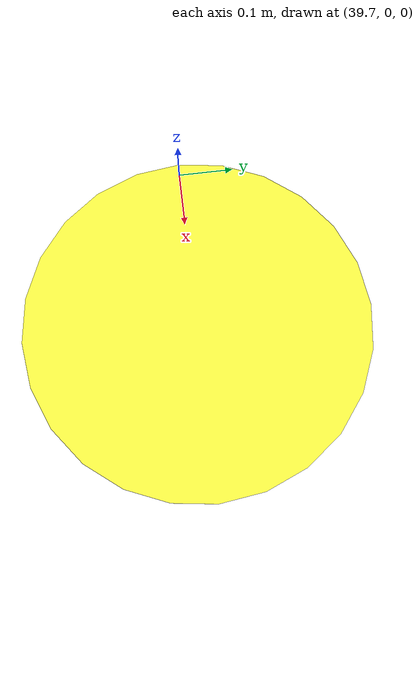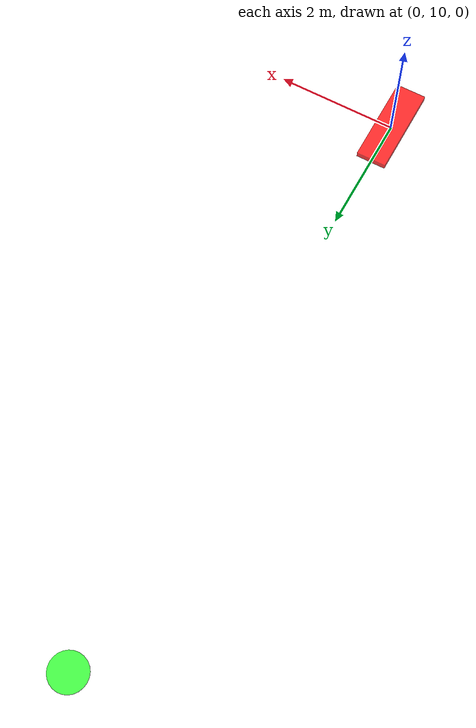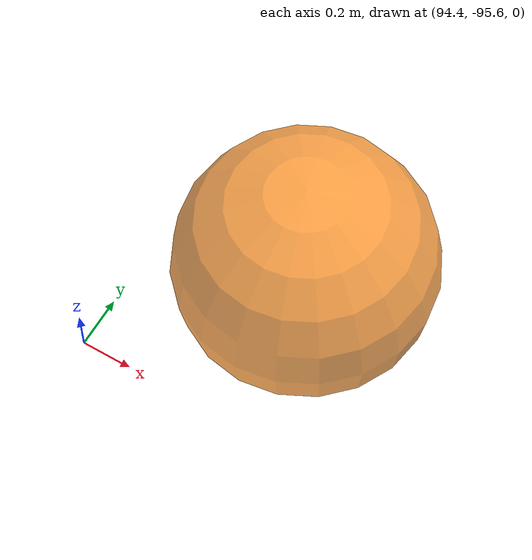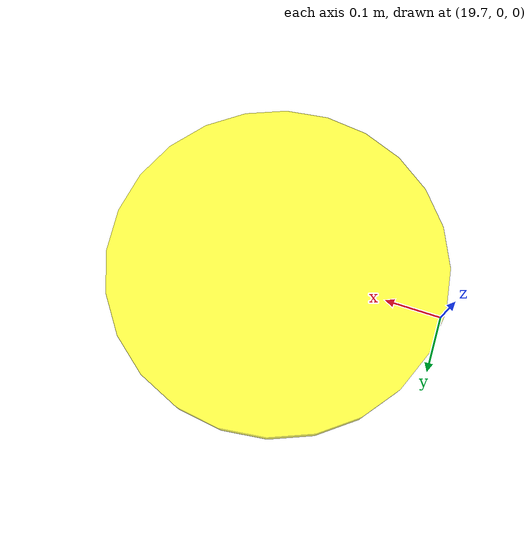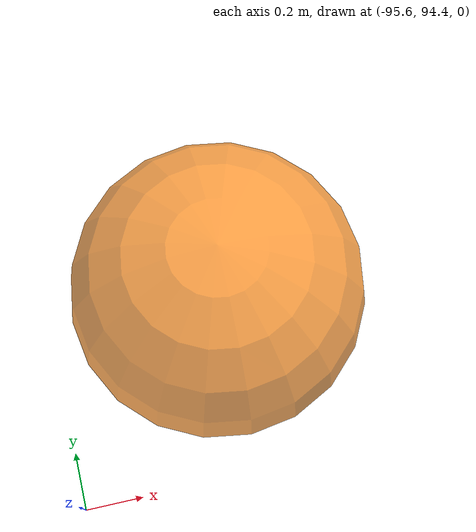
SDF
<?xml version="1.0" ?>
<sdf version="1.9">
  <world name="satellite_portland">

    <!-- Physics -->
    <physics name="1ms" type="ignored">
      <max_step_size>0.001</max_step_size>
      <real_time_factor>1</real_time_factor>
    </physics>

    <!-- Gazebo Harmonic plugins -->
    <plugin filename="gz-sim-physics-system" name="gz::sim::systems::Physics"/>
    <plugin filename="gz-sim-user-commands-system" name="gz::sim::systems::UserCommands"/>
    <plugin filename="gz-sim-scene-broadcaster-system" name="gz::sim::systems::SceneBroadcaster"/>
    <plugin filename="gz-sim-sensors-system" name="gz::sim::systems::Sensors">
      <render_engine>ogre</render_engine>
    </plugin>
    <plugin filename="gz-sim-imu-system" name="gz::sim::systems::Imu"/>
    <plugin filename="gz-sim-contact-system" name="gz::sim::systems::Contact"/>

    <!-- Lighting - simulate outdoor conditions -->
    <light type="directional" name="sun">
      <cast_shadows>true</cast_shadows>
      <pose>0 0 100 0 0 0</pose>
      <diffuse>0.9 0.9 0.85 1</diffuse>
      <specular>0.3 0.3 0.3 1</specular>
      <attenuation>
        <range>1000</range>
        <constant>0.9</constant>
        <linear>0.01</linear>
        <quadratic>0.001</quadratic>
      </attenuation>
      <!-- Sun angle for Portland, OR latitude -->
      <direction>-0.4 0.2 -0.9</direction>
    </light>

    <!-- Ambient light for outdoor scene -->
    <light type="directional" name="ambient">
      <cast_shadows>false</cast_shadows>
      <pose>0 0 50 0 0 0</pose>
      <diffuse>0.3 0.3 0.35 1</diffuse>
      <specular>0 0 0 1</specular>
      <direction>0 0 -1</direction>
    </light>

    <!-- Ground plane with satellite imagery texture -->
    <model name="satellite_ground">
      <static>true</static>
      <link name="link">
        <collision name="collision">
          <geometry>
            <plane>
              <normal>0 0 1</normal>
              <size>200 200</size>
            </plane>
          </geometry>
          <surface>
            <friction>
              <ode>
                <mu>0.8</mu>
                <mu2>0.8</mu2>
              </ode>
            </friction>
          </surface>
        </collision>
        <visual name="visual">
          <cast_shadows>false</cast_shadows>
          <geometry>
            <plane>
              <normal>0 0 1</normal>
              <size>200 200</size>
            </plane>
          </geometry>
          <material>
            <ambient>1 1 1 1</ambient>
            <diffuse>1 1 1 1</diffuse>
            <specular>0.1 0.1 0.1 1</specular>
            <!-- Texture path: relative to world file location, go up one level to share dir -->
            <pbr>
              <metal>
                <albedo_map>../textures/satellite_portland.jpg</albedo_map>
              </metal>
            </pbr>
          </material>
        </visual>
      </link>
    </model>

    <!-- RTK Base Station marker at origin -->
    <model name="base_station_marker">
      <pose>0 0 0.01 0 0 0</pose>
      <static>true</static>
      <link name="link">
        <!-- Circular base plate -->
        <visual name="base_visual">
          <geometry>
            <cylinder>
              <radius>1.0</radius>
              <length>0.02</length>
            </cylinder>
          </geometry>
          <material>
            <ambient>0 0.5 1 0.7</ambient>
            <diffuse>0 0.5 1 0.7</diffuse>
          </material>
        </visual>
        <!-- Center post -->
        <visual name="post_visual">
          <pose>0 0 0.5 0 0 0</pose>
          <geometry>
            <cylinder>
              <radius>0.05</radius>
              <length>1.0</length>
            </cylinder>
          </geometry>
          <material>
            <ambient>0.3 0.3 0.3 1</ambient>
            <diffuse>0.3 0.3 0.3 1</diffuse>
          </material>
        </visual>
        <!-- GPS antenna sphere -->
        <visual name="antenna_visual">
          <pose>0 0 1.1 0 0 0</pose>
          <geometry>
            <sphere>
              <radius>0.15</radius>
            </sphere>
          </geometry>
          <material>
            <ambient>0.9 0.9 0.9 1</ambient>
            <diffuse>0.9 0.9 0.9 1</diffuse>
          </material>
        </visual>
      </link>
    </model>

    <!-- Compass rose / orientation marker -->
    <model name="compass_north">
      <pose>0 10 0.05 0 0 0</pose>
      <static>true</static>
      <link name="link">
        <visual name="visual">
          <geometry>
            <box>
              <size>0.5 1.5 0.1</size>
            </box>
          </geometry>
          <material>
            <ambient>1 0 0 0.8</ambient>
            <diffuse>1 0 0 0.8</diffuse>
          </material>
        </visual>
      </link>
    </model>

    <!-- Scale reference markers (every 20 meters) -->
    <model name="scale_20m_east">
      <pose>20 0 0.02 0 0 0</pose>
      <static>true</static>
      <link name="link">
        <visual name="visual">
          <geometry>
            <cylinder>
              <radius>0.3</radius>
              <length>0.04</length>
            </cylinder>
          </geometry>
          <material>
            <ambient>1 1 0 0.7</ambient>
            <diffuse>1 1 0 0.7</diffuse>
          </material>
        </visual>
      </link>
    </model>

    <model name="scale_40m_east">
      <pose>40 0 0.02 0 0 0</pose>
      <static>true</static>
      <link name="link">
        <visual name="visual">
          <geometry>
            <cylinder>
              <radius>0.3</radius>
              <length>0.04</length>
            </cylinder>
          </geometry>
          <material>
            <ambient>1 1 0 0.7</ambient>
            <diffuse>1 1 0 0.7</diffuse>
          </material>
        </visual>
      </link>
    </model>

    <model name="scale_20m_north">
      <pose>0 20 0.02 0 0 0</pose>
      <static>true</static>
      <link name="link">
        <visual name="visual">
          <geometry>
            <cylinder>
              <radius>0.3</radius>
              <length>0.04</length>
            </cylinder>
          </geometry>
          <material>
            <ambient>0 1 0 0.7</ambient>
            <diffuse>0 1 0 0.7</diffuse>
          </material>
        </visual>
      </link>
    </model>

    <model name="scale_40m_north">
      <pose>0 40 0.02 0 0 0</pose>
      <static>true</static>
      <link name="link">
        <visual name="visual">
          <geometry>
            <cylinder>
              <radius>0.3</radius>
              <length>0.04</length>
            </cylinder>
          </geometry>
          <material>
            <ambient>0 1 0 0.7</ambient>
            <diffuse>0 1 0 0.7</diffuse>
          </material>
        </visual>
      </link>
    </model>

    <!-- Boundary markers (edge of satellite imagery) -->
    <model name="boundary_ne">
      <pose>95 95 0.25 0 0 0</pose>
      <static>true</static>
      <link name="link">
        <visual name="visual">
          <geometry>
            <sphere>
              <radius>0.5</radius>
            </sphere>
          </geometry>
          <material>
            <ambient>1 0.5 0 0.7</ambient>
            <diffuse>1 0.5 0 0.7</diffuse>
          </material>
        </visual>
      </link>
    </model>

    <model name="boundary_nw">
      <pose>-95 95 0.25 0 0 0</pose>
      <static>true</static>
      <link name="link">
        <visual name="visual">
          <geometry>
            <sphere>
              <radius>0.5</radius>
            </sphere>
          </geometry>
          <material>
            <ambient>1 0.5 0 0.7</ambient>
            <diffuse>1 0.5 0 0.7</diffuse>
          </material>
        </visual>
      </link>
    </model>

    <model name="boundary_se">
      <pose>95 -95 0.25 0 0 0</pose>
      <static>true</static>
      <link name="link">
        <visual name="visual">
          <geometry>
            <sphere>
              <radius>0.5</radius>
            </sphere>
          </geometry>
          <material>
            <ambient>1 0.5 0 0.7</ambient>
            <diffuse>1 0.5 0 0.7</diffuse>
          </material>
        </visual>
      </link>
    </model>

    <model name="boundary_sw">
      <pose>-95 -95 0.25 0 0 0</pose>
      <static>true</static>
      <link name="link">
        <visual name="visual">
          <geometry>
            <sphere>
              <radius>0.5</radius>
            </sphere>
          </geometry>
          <material>
            <ambient>1 0.5 0 0.7</ambient>
            <diffuse>1 0.5 0 0.7</diffuse>
          </material>
        </visual>
      </link>
    </model>

  </world>
</sdf>
